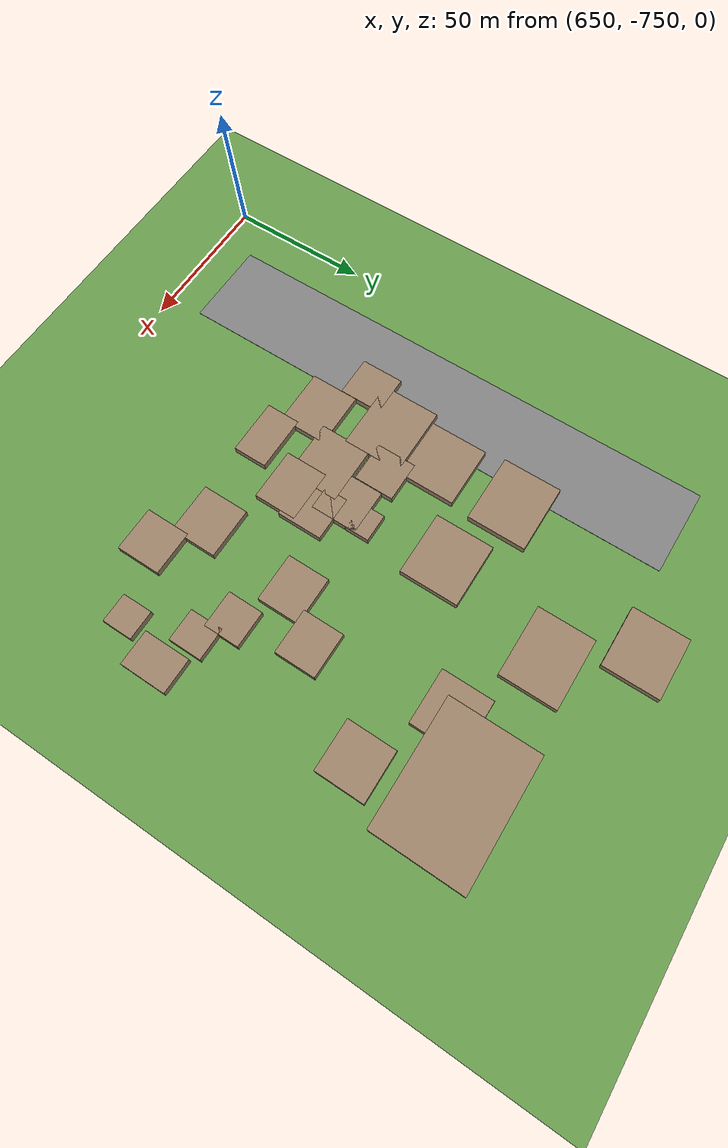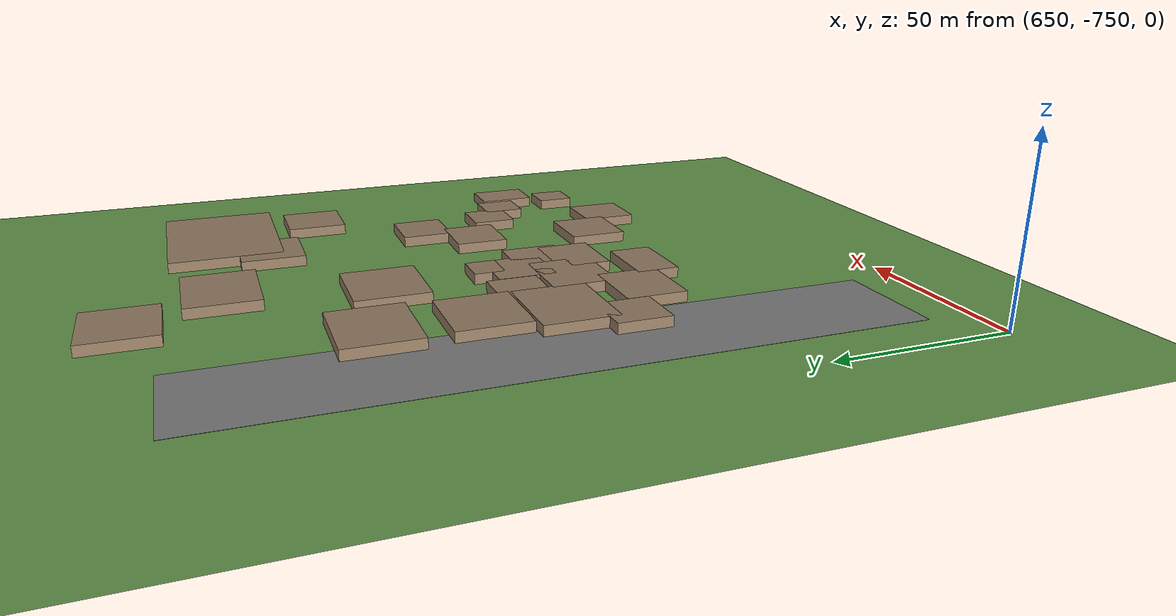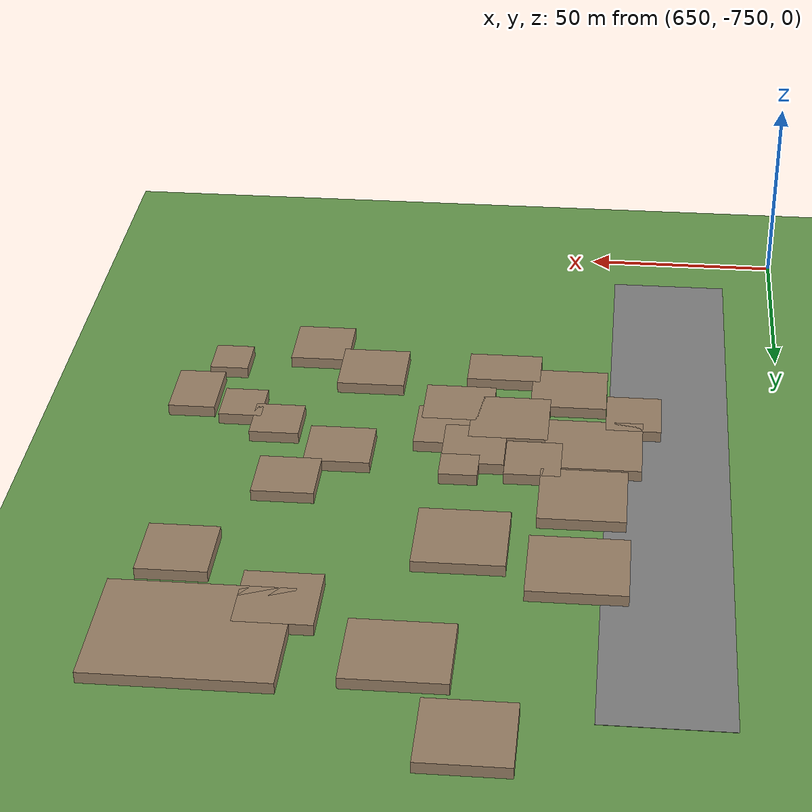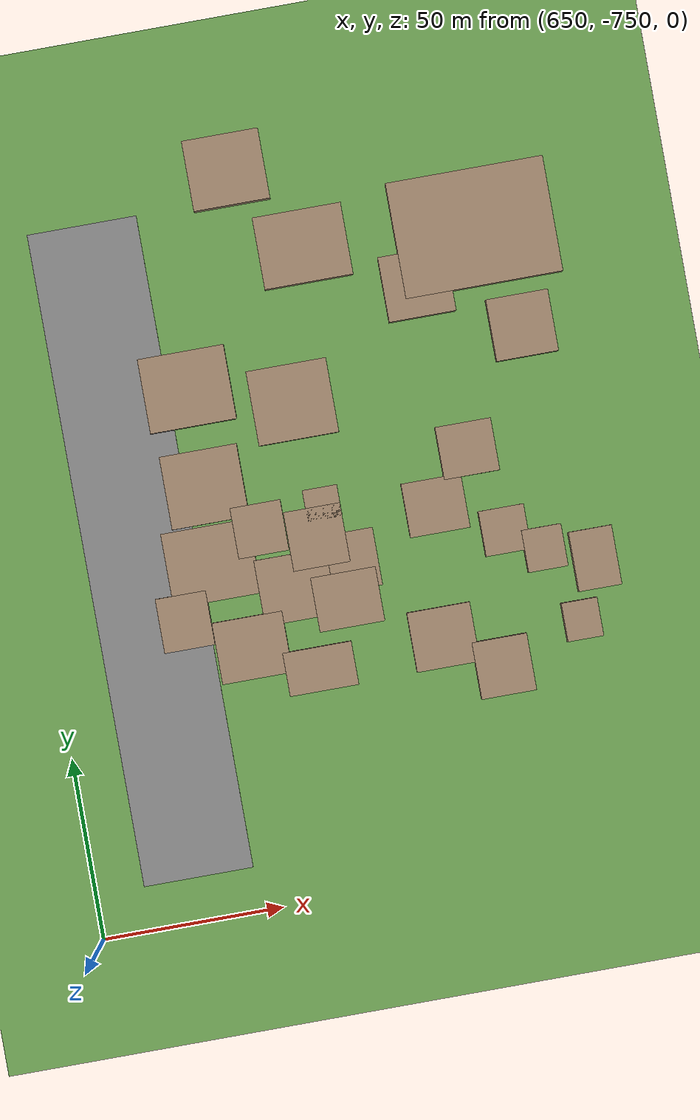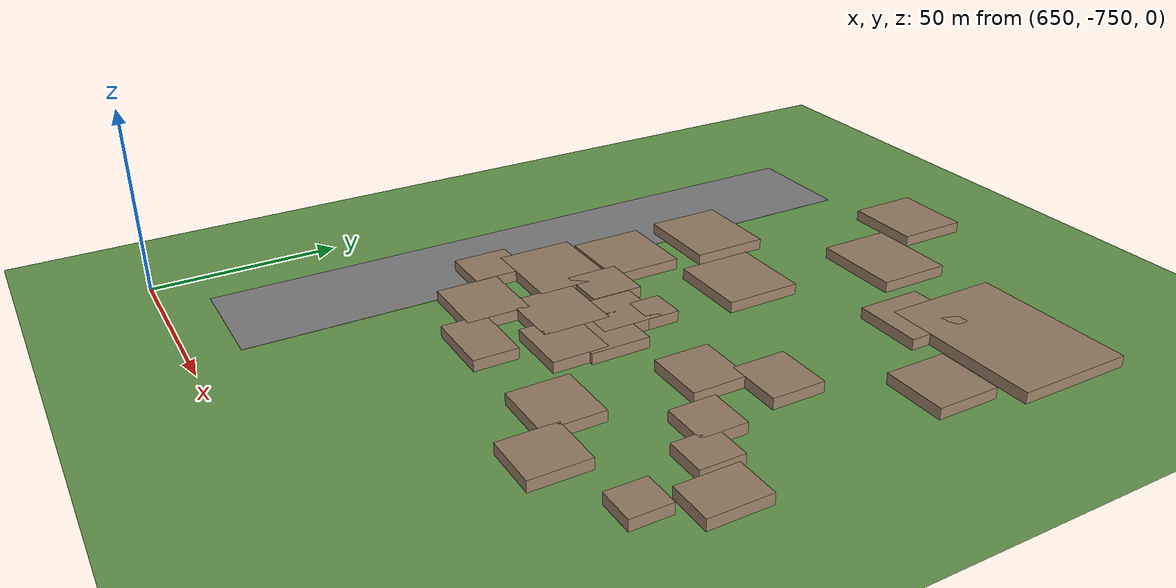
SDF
<sdf version="1.9">
 <world name="kimje_farmland">
  <model name="ground_plane">
   <static>true</static>
   <link name="link">
    <collision name="collision">
     <geometry><plane><normal>0 0 1</normal><size>2000 2000</size></plane></geometry>
    </collision>
    <visual name="visual">
     <geometry><plane><normal>0 0 1</normal><size>2000 2000</size></plane></geometry>
     <material><ambient>0.4 0.6 0.3 1</ambient><diffuse>0.4 0.6 0.3 1</diffuse></material>
    </visual>
   </link>
  </model>
  <model name="osm_112">
   <static>true</static>
   <pose>678.42 -647.27 0.040 0 0 0</pose>
   <link name="link">
    <collision name="collision"><geometry><box><size>30.29 180.92 0.080</size></box></geometry></collision>
    <visual name="visual">
     <geometry><box><size>30.29 180.92 0.080</size></box></geometry>
     <material><ambient>0.5 0.5 0.5 1</ambient><diffuse>0.5 0.5 0.5 1</diffuse></material>
    </visual>
   </link>
  </model>
  <model name="osm_164">
   <static>true</static>
   <pose>783.69 -576.56 1.500 0 0 0</pose>
   <link name="link">
    <collision name="collision"><geometry><box><size>43.43 31.90 3.000</size></box></geometry></collision>
    <visual name="visual">
     <geometry><box><size>43.43 31.90 3.000</size></box></geometry>
     <material><ambient>0.6 0.5 0.4 1</ambient><diffuse>0.6 0.5 0.4 1</diffuse></material>
    </visual>
   </link>
  </model>
  <model name="osm_1714">
   <static>true</static>
   <pose>719.93 -549.22 1.500 0 0 0</pose>
   <link name="link">
    <collision name="collision"><geometry><box><size>21.09 19.41 3.000</size></box></geometry></collision>
    <visual name="visual">
     <geometry><box><size>21.09 19.41 3.000</size></box></geometry>
     <material><ambient>0.6 0.5 0.4 1</ambient><diffuse>0.6 0.5 0.4 1</diffuse></material>
    </visual>
   </link>
  </model>
  <model name="osm_1715">
   <static>true</static>
   <pose>736.85 -573.36 1.500 0 0 0</pose>
   <link name="link">
    <collision name="collision"><geometry><box><size>24.43 19.85 3.000</size></box></geometry></collision>
    <visual name="visual">
     <geometry><box><size>24.43 19.85 3.000</size></box></geometry>
     <material><ambient>0.6 0.5 0.4 1</ambient><diffuse>0.6 0.5 0.4 1</diffuse></material>
    </visual>
   </link>
  </model>
  <model name="osm_1716">
   <static>true</static>
   <pose>791.83 -605.14 1.500 0 0 0</pose>
   <link name="link">
    <collision name="collision"><geometry><box><size>17.13 17.05 3.000</size></box></geometry></collision>
    <visual name="visual">
     <geometry><box><size>17.13 17.05 3.000</size></box></geometry>
     <material><ambient>0.6 0.5 0.4 1</ambient><diffuse>0.6 0.5 0.4 1</diffuse></material>
    </visual>
   </link>
  </model>
  <model name="osm_1717">
   <static>true</static>
   <pose>765.64 -589.06 1.500 0 0 0</pose>
   <link name="link">
    <collision name="collision"><geometry><box><size>18.54 17.90 3.000</size></box></geometry></collision>
    <visual name="visual">
     <geometry><box><size>18.54 17.90 3.000</size></box></geometry>
     <material><ambient>0.6 0.5 0.4 1</ambient><diffuse>0.6 0.5 0.4 1</diffuse></material>
    </visual>
   </link>
  </model>
  <model name="osm_1724">
   <static>true</static>
   <pose>800.16 -671.09 1.500 0 0 0</pose>
   <link name="link">
    <collision name="collision"><geometry><box><size>11.90 16.40 3.000</size></box></geometry></collision>
    <visual name="visual">
     <geometry><box><size>11.90 16.40 3.000</size></box></geometry>
     <material><ambient>0.6 0.5 0.4 1</ambient><diffuse>0.6 0.5 0.4 1</diffuse></material>
    </visual>
   </link>
  </model>
  <model name="osm_1725">
   <static>true</static>
   <pose>787.14 -665.93 1.500 0 0 0</pose>
   <link name="link">
    <collision name="collision"><geometry><box><size>10.96 11.67 3.000</size></box></geometry></collision>
    <visual name="visual">
     <geometry><box><size>10.96 11.67 3.000</size></box></geometry>
     <material><ambient>0.6 0.5 0.4 1</ambient><diffuse>0.6 0.5 0.4 1</diffuse></material>
    </visual>
   </link>
  </model>
  <model name="osm_1726">
   <static>true</static>
   <pose>793.81 -686.88 1.500 0 0 0</pose>
   <link name="link">
    <collision name="collision"><geometry><box><size>9.90 10.63 3.000</size></box></geometry></collision>
    <visual name="visual">
     <geometry><box><size>9.90 10.63 3.000</size></box></geometry>
     <material><ambient>0.6 0.5 0.4 1</ambient><diffuse>0.6 0.5 0.4 1</diffuse></material>
    </visual>
   </link>
  </model>
  <model name="osm_1727">
   <static>true</static>
   <pose>770.61 -695.64 1.500 0 0 0</pose>
   <link name="link">
    <collision name="collision"><geometry><box><size>15.18 15.68 3.000</size></box></geometry></collision>
    <visual name="visual">
     <geometry><box><size>15.18 15.68 3.000</size></box></geometry>
     <material><ambient>0.6 0.5 0.4 1</ambient><diffuse>0.6 0.5 0.4 1</diffuse></material>
    </visual>
   </link>
  </model>
  <model name="osm_1736">
   <static>true</static>
   <pose>721.34 -687.49 1.500 0 0 0</pose>
   <link name="link">
    <collision name="collision"><geometry><box><size>18.99 11.97 3.000</size></box></geometry></collision>
    <visual name="visual">
     <geometry><box><size>18.99 11.97 3.000</size></box></geometry>
     <material><ambient>0.6 0.5 0.4 1</ambient><diffuse>0.6 0.5 0.4 1</diffuse></material>
    </visual>
   </link>
  </model>
  <model name="osm_1737">
   <static>true</static>
   <pose>755.73 -684.92 1.500 0 0 0</pose>
   <link name="link">
    <collision name="collision"><geometry><box><size>17.39 16.41 3.000</size></box></geometry></collision>
    <visual name="visual">
     <geometry><box><size>17.39 16.41 3.000</size></box></geometry>
     <material><ambient>0.6 0.5 0.4 1</ambient><diffuse>0.6 0.5 0.4 1</diffuse></material>
    </visual>
   </link>
  </model>
  <model name="osm_1739">
   <static>true</static>
   <pose>704.02 -678.56 1.500 0 0 0</pose>
   <link name="link">
    <collision name="collision"><geometry><box><size>19.38 16.93 3.000</size></box></geometry></collision>
    <visual name="visual">
     <geometry><box><size>19.38 16.93 3.000</size></box></geometry>
     <material><ambient>0.6 0.5 0.4 1</ambient><diffuse>0.6 0.5 0.4 1</diffuse></material>
    </visual>
   </link>
  </model>
  <model name="osm_1740">
   <static>true</static>
   <pose>687.27 -668.43 1.500 0 0 0</pose>
   <link name="link">
    <collision name="collision"><geometry><box><size>13.92 14.96 3.000</size></box></geometry></collision>
    <visual name="visual">
     <geometry><box><size>13.92 14.96 3.000</size></box></geometry>
     <material><ambient>0.6 0.5 0.4 1</ambient><diffuse>0.6 0.5 0.4 1</diffuse></material>
    </visual>
   </link>
  </model>
  <model name="osm_1741">
   <static>true</static>
   <pose>726.61 -651.98 1.500 0 0 0</pose>
   <link name="link">
    <collision name="collision"><geometry><box><size>15.63 16.27 3.000</size></box></geometry></collision>
    <visual name="visual">
     <geometry><box><size>15.63 16.27 3.000</size></box></geometry>
     <material><ambient>0.6 0.5 0.4 1</ambient><diffuse>0.6 0.5 0.4 1</diffuse></material>
    </visual>
   </link>
  </model>
  <model name="osm_1742">
   <static>true</static>
   <pose>711.64 -647.15 1.500 0 0 0</pose>
   <link name="link">
    <collision name="collision"><geometry><box><size>13.91 14.00 3.000</size></box></geometry></collision>
    <visual name="visual">
     <geometry><box><size>13.91 14.00 3.000</size></box></geometry>
     <material><ambient>0.6 0.5 0.4 1</ambient><diffuse>0.6 0.5 0.4 1</diffuse></material>
    </visual>
   </link>
  </model>
  <model name="osm_1743">
   <static>true</static>
   <pose>731.90 -670.18 1.500 0 0 0</pose>
   <link name="link">
    <collision name="collision"><geometry><box><size>17.94 15.02 3.000</size></box></geometry></collision>
    <visual name="visual">
     <geometry><box><size>17.94 15.02 3.000</size></box></geometry>
     <material><ambient>0.6 0.5 0.4 1</ambient><diffuse>0.6 0.5 0.4 1</diffuse></material>
    </visual>
   </link>
  </model>
  <model name="osm_1744">
   <static>true</static>
   <pose>718.51 -664.42 1.500 0 0 0</pose>
   <link name="link">
    <collision name="collision"><geometry><box><size>19.91 18.13 3.000</size></box></geometry></collision>
    <visual name="visual">
     <geometry><box><size>19.91 18.13 3.000</size></box></geometry>
     <material><ambient>0.6 0.5 0.4 1</ambient><diffuse>0.6 0.5 0.4 1</diffuse></material>
    </visual>
   </link>
  </model>
  <model name="osm_1745">
   <static>true</static>
   <pose>697.06 -654.03 1.500 0 0 0</pose>
   <link name="link">
    <collision name="collision"><geometry><box><size>24.32 20.51 3.000</size></box></geometry></collision>
    <visual name="visual">
     <geometry><box><size>24.32 20.51 3.000</size></box></geometry>
     <material><ambient>0.6 0.5 0.4 1</ambient><diffuse>0.6 0.5 0.4 1</diffuse></material>
    </visual>
   </link>
  </model>
  <model name="osm_1746">
   <static>true</static>
   <pose>726.60 -614.60 1.500 0 0 0</pose>
   <link name="link">
    <collision name="collision"><geometry><box><size>22.11 20.56 3.000</size></box></geometry></collision>
    <visual name="visual">
     <geometry><box><size>22.11 20.56 3.000</size></box></geometry>
     <material><ambient>0.6 0.5 0.4 1</ambient><diffuse>0.6 0.5 0.4 1</diffuse></material>
    </visual>
   </link>
  </model>
  <model name="osm_1747">
   <static>true</static>
   <pose>777.30 -659.21 1.500 0 0 0</pose>
   <link name="link">
    <collision name="collision"><geometry><box><size>12.52 12.48 3.000</size></box></geometry></collision>
    <visual name="visual">
     <geometry><box><size>12.52 12.48 3.000</size></box></geometry>
     <material><ambient>0.6 0.5 0.4 1</ambient><diffuse>0.6 0.5 0.4 1</diffuse></material>
    </visual>
   </link>
  </model>
  <model name="osm_1748">
   <static>true</static>
   <pose>698.97 -606.13 1.500 0 0 0</pose>
   <link name="link">
    <collision name="collision"><geometry><box><size>23.80 20.54 3.000</size></box></geometry></collision>
    <visual name="visual">
     <geometry><box><size>23.80 20.54 3.000</size></box></geometry>
     <material><ambient>0.6 0.5 0.4 1</ambient><diffuse>0.6 0.5 0.4 1</diffuse></material>
    </visual>
   </link>
  </model>
  <model name="osm_1749">
   <static>true</static>
   <pose>771.21 -635.58 1.500 0 0 0</pose>
   <link name="link">
    <collision name="collision"><geometry><box><size>15.36 14.46 3.000</size></box></geometry></collision>
    <visual name="visual">
     <geometry><box><size>15.36 14.46 3.000</size></box></geometry>
     <material><ambient>0.6 0.5 0.4 1</ambient><diffuse>0.6 0.5 0.4 1</diffuse></material>
    </visual>
   </link>
  </model>
  <model name="osm_1750">
   <static>true</static>
   <pose>759.95 -649.33 1.500 0 0 0</pose>
   <link name="link">
    <collision name="collision"><geometry><box><size>16.52 14.87 3.000</size></box></geometry></collision>
    <visual name="visual">
     <geometry><box><size>16.52 14.87 3.000</size></box></geometry>
     <material><ambient>0.6 0.5 0.4 1</ambient><diffuse>0.6 0.5 0.4 1</diffuse></material>
    </visual>
   </link>
  </model>
  <model name="osm_1751">
   <static>true</static>
   <pose>698.91 -633.11 1.500 0 0 0</pose>
   <link name="link">
    <collision name="collision"><geometry><box><size>21.35 20.12 3.000</size></box></geometry></collision>
    <visual name="visual">
     <geometry><box><size>21.35 20.12 3.000</size></box></geometry>
     <material><ambient>0.6 0.5 0.4 1</ambient><diffuse>0.6 0.5 0.4 1</diffuse></material>
    </visual>
   </link>
  </model>
  <model name="osm_1878">
   <static>true</static>
   <pose>729.70 -643.17 1.500 0 0 0</pose>
   <link name="link">
    <collision name="collision"><geometry><box><size>9.58 8.63 3.000</size></box></geometry></collision>
    <visual name="visual">
     <geometry><box><size>9.58 8.63 3.000</size></box></geometry>
     <material><ambient>0.6 0.5 0.4 1</ambient><diffuse>0.6 0.5 0.4 1</diffuse></material>
    </visual>
   </link>
  </model>
  <model name="osm_1886">
   <static>true</static>
   <pose>734.29 -659.98 1.500 0 0 0</pose>
   <link name="link">
    <collision name="collision"><geometry><box><size>15.39 15.92 3.000</size></box></geometry></collision>
    <visual name="visual">
     <geometry><box><size>15.39 15.92 3.000</size></box></geometry>
     <material><ambient>0.6 0.5 0.4 1</ambient><diffuse>0.6 0.5 0.4 1</diffuse></material>
    </visual>
   </link>
  </model>
 </world>
</sdf>
